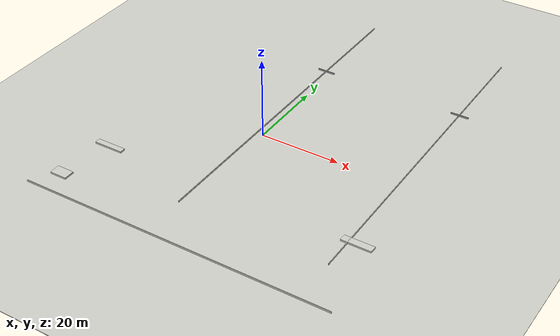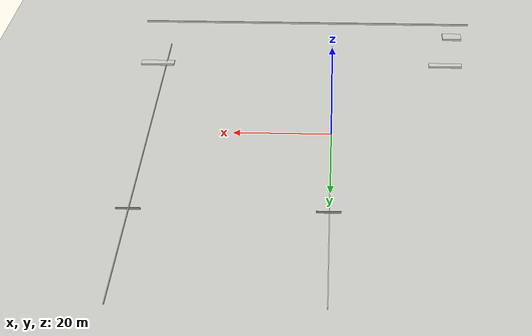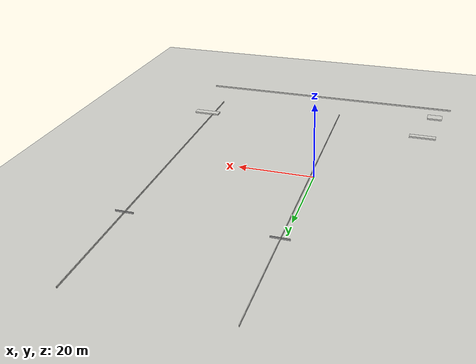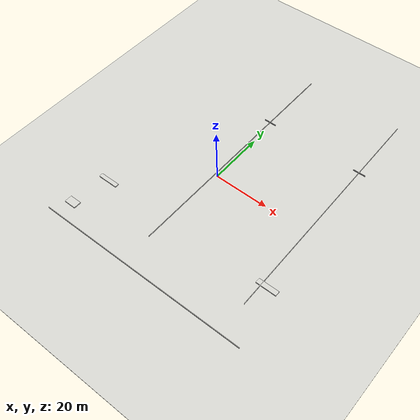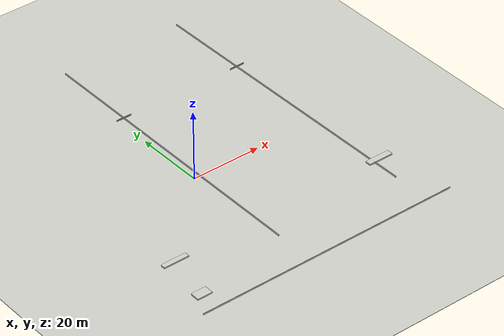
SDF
<sdf version="1.6">
 <world name="default">
  <include><uri>model://sun</uri></include>
  <plugin name="ros_interface_plugin" filename="librotors_gazebo_ros_interface_plugin.so"/>
  <model name="top_wall">
   <pose>11.0476 91.0617 2.0 1.5708 -0 0</pose>
   <link name="Wall_39">
    <collision name="Wall_39_Collision">
     <geometry><box><size>400 0.15 400</size></box></geometry>
     <pose>0 0 1.6 0 -0 0</pose>
    </collision>
    <visual name="Wall_39_Visual">
     <pose>0 0 1.6 0 -0 0</pose>
     <geometry><box><size>400 0.15 400</size></box></geometry>
     <material>
      <script><uri>file://media/materials/scripts/gazebo.material</uri><name>Gazebo/CeilingTiled</name></script>
      <ambient>1 1 1 1</ambient>
     </material>
     <meta><layer>0</layer></meta>
    </visual>
   </link>
   <static>1</static>
  </model>
  <model name="block_1">
   <pose>18.2331 -24.2127 0 0 -0 0</pose>
   <link name="Wall_7">
    <collision name="Wall_7_Collision">
     <geometry><box><size>1.7 7.25 2.5</size></box></geometry>
     <pose>0 0 1.25 0 -0 0</pose>
    </collision>
    <visual name="Wall_7_Visual">
     <pose>0 0 1.25 0 -0 0</pose>
     <geometry><box><size>1.7 7.25 2.5</size></box></geometry>
     <material>
      <script><uri>file://media/materials/scripts/gazebo.material</uri><name>Gazebo/CeilingTiled</name></script>
      <ambient>1 1 1 1</ambient>
     </material>
     <meta><layer>0</layer></meta>
    </visual>
    <pose>20.5527 -0.076909 0 0 -0 -1.5708</pose>
   </link>
   <static>1</static>
  </model>
  <model name="block_2">
   <pose>-45.5303 -24.5668 0 0 -0 0</pose>
   <link name="Wall_7">
    <collision name="Wall_7_Collision">
     <geometry><box><size>1.4 7.25 2.5</size></box></geometry>
     <pose>0 0 1.25 0 -0 0</pose>
    </collision>
    <visual name="Wall_7_Visual">
     <pose>0 0 1.25 0 -0 0</pose>
     <geometry><box><size>1.4 7.25 2.5</size></box></geometry>
     <material>
      <script><uri>file://media/materials/scripts/gazebo.material</uri><name>Gazebo/CeilingTiled</name></script>
      <ambient>1 1 1 1</ambient>
     </material>
     <meta><layer>0</layer></meta>
    </visual>
    <pose>20.5527 -0.076909 0 0 -0 -1.5708</pose>
   </link>
   <static>1</static>
  </model>
  <model name="block_3">
   <pose>-48.0998 -37.9492 0 0 -0 0</pose>
   <link name="Wall_7">
    <collision name="Wall_7_Collision">
     <geometry><box><size>2.65 4.25 2.5</size></box></geometry>
     <pose>0 0 1.25 0 -0 0</pose>
    </collision>
    <visual name="Wall_7_Visual">
     <pose>0 0 1.25 0 -0 0</pose>
     <geometry><box><size>2.65 4.25 2.5</size></box></geometry>
     <material>
      <script><uri>file://media/materials/scripts/gazebo.material</uri><name>Gazebo/CeilingTiled</name></script>
      <ambient>1 1 1 1</ambient>
     </material>
     <meta><layer>0</layer></meta>
    </visual>
    <pose>20.5527 -0.076909 0 0 -0 -1.5708</pose>
   </link>
   <static>1</static>
  </model>
  <model name="wall0">
   <pose>-14.3855 -44.093 0 0 -0 0</pose>
   <link name="Wall_7">
    <collision name="Wall_7_Collision">
     <geometry><box><size>0.15 76.25 2.5</size></box></geometry>
     <pose>0 0 1.25 0 -0 0</pose>
    </collision>
    <visual name="Wall_7_Visual">
     <pose>0 0 1.25 0 -0 0</pose>
     <geometry><box><size>0.15 76.25 2.5</size></box></geometry>
     <material>
      <script><uri>file://media/materials/scripts/gazebo.material</uri><name>Gazebo/CeilingTiled</name></script>
      <ambient>1 1 1 1</ambient>
     </material>
     <meta><layer>0</layer></meta>
    </visual>
    <pose>20.5527 -0.076909 0 0 -0 -1.5708</pose>
   </link>
   <static>1</static>
  </model>
  <model name="wall1">
   <pose>15.9398 10.05631 0 0 -0 0.01</pose>
   <link name="Wall_5">
    <collision name="Wall_5_Collision">
     <geometry><box><size>4.5 0.15 2.5</size></box></geometry>
     <pose>0.0 0.2 1.25 0 -0 0</pose>
    </collision>
    <visual name="Wall_5_Visual">
     <pose>0.0 0.2 1.25 0 -0 0</pose>
     <geometry><box><size>4.5 0.15 2.5</size></box></geometry>
     <material>
      <script><uri>file://media/materials/scripts/gazebo.material</uri><name>Gazebo/Grey</name></script>
      <ambient>1 1 1 1</ambient>
     </material>
     <meta><layer>0</layer></meta>
    </visual>
    <pose>20.6476 18.1269 0 0 -0 0</pose>
   </link>
   <link name="Wall_7">
    <collision name="Wall_7_Collision">
     <geometry><box><size>86.25 0.15 2.5</size></box></geometry>
     <pose>-0.2 0.0 1.25 0 -0 0</pose>
    </collision>
    <visual name="Wall_7_Visual">
     <pose>-0.2 0.0 1.25 0 -0 0</pose>
     <geometry><box><size>86.25 0.15 2.5</size></box></geometry>
     <material>
      <script><uri>file://media/materials/scripts/gazebo.material</uri><name>Gazebo/CeilingTiled</name></script>
      <ambient>1 1 1 1</ambient>
     </material>
     <meta><layer>0</layer></meta>
    </visual>
    <pose>20.5527 -0.076909 0 0 -0 -1.5708</pose>
   </link>
   <static>1</static>
  </model>
  <model name="wall2">
   <pose>-20.4579 10.61501 0 0 -0 0</pose>
   <link name="Wall_5">
    <collision name="Wall_5_Collision">
     <geometry><box><size>4.5 0.15 2.5</size></box></geometry>
     <pose>0 0 1.25 0 -0 0</pose>
    </collision>
    <visual name="Wall_5_Visual">
     <pose>0 0 1.25 0 -0 0</pose>
     <geometry><box><size>4.5 0.15 2.5</size></box></geometry>
     <material>
      <script><uri>file://media/materials/scripts/gazebo.material</uri><name>Gazebo/Grey</name></script>
      <ambient>1 1 1 1</ambient>
     </material>
     <meta><layer>0</layer></meta>
    </visual>
    <pose>20.6476 18.1269 0 0 -0 0</pose>
   </link>
   <link name="Wall_7">
    <collision name="Wall_7_Collision">
     <geometry><box><size>86.25 0.15 2.5</size></box></geometry>
     <pose>0 0 1.25 0 -0 0</pose>
    </collision>
    <visual name="Wall_7_Visual">
     <pose>0 0 1.25 0 -0 0</pose>
     <geometry><box><size>86.25 0.15 2.5</size></box></geometry>
     <material>
      <script><uri>file://media/materials/scripts/gazebo.material</uri><name>Gazebo/CeilingTiled</name></script>
      <ambient>1 1 1 1</ambient>
     </material>
     <meta><layer>0</layer></meta>
    </visual>
    <pose>20.5527 -0.076909 0 0 -0 -1.5708</pose>
   </link>
   <static>1</static>
  </model>
  <spherical_coordinates>
   <surface_model>EARTH_WGS84</surface_model>
   <latitude_deg>47.3667</latitude_deg>
   <longitude_deg>8.5500</longitude_deg>
   <elevation>500.0</elevation>
   <heading_deg>0</heading_deg>
  </spherical_coordinates>
  <physics type="ode">
   <ode>
    <solver><type>quick</type><iters>1000</iters><sor>1.3</sor></solver>
    <constraints>
     <cfm>0</cfm>
     <erp>0.2</erp>
     <contact_max_correcting_vel>100</contact_max_correcting_vel>
     <contact_surface_layer>0.001</contact_surface_layer>
    </constraints>
   </ode>
   <max_step_size>0.001</max_step_size>
   <real_time_factor>1</real_time_factor>
   <real_time_update_rate>1000</real_time_update_rate>
   <gravity>0 0 -9.8</gravity>
  </physics>
 </world>
</sdf>
